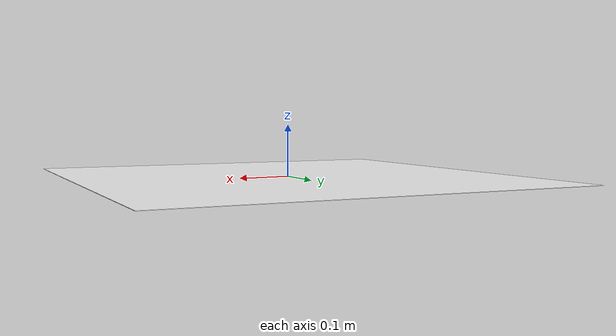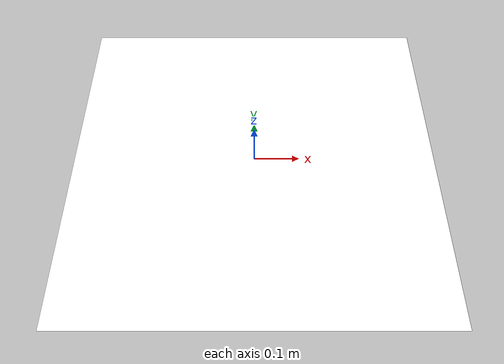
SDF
<?xml version='1.0' encoding='utf-8'?>
<sdf version='1.10'>
<model name='triangle'>
  <link name='triangle_link'>
    <enable_wind>false</enable_wind>
    <visual name='triangle_img'>
      <pose>0 0 0.001 0 0 0</pose>
      <geometry><plane>
        <normal>0 0 1</normal>
        <size>0.8 0.8</size>
      </plane></geometry>
        <material>
        <diffuse>1 1 1 1</diffuse>
        <specular>1 1 1 1</specular>
        <pbr>
          <metal>
            <albedo_map>materials/textures/triangle.png</albedo_map>
            <metalness>0</metalness>
            <roughness>1</roughness>
          </metal>
        </pbr>
        </material>
    </visual>
  </link>
  <self_collide>false</self_collide>
  <static>true</static>
</model>
</sdf>
